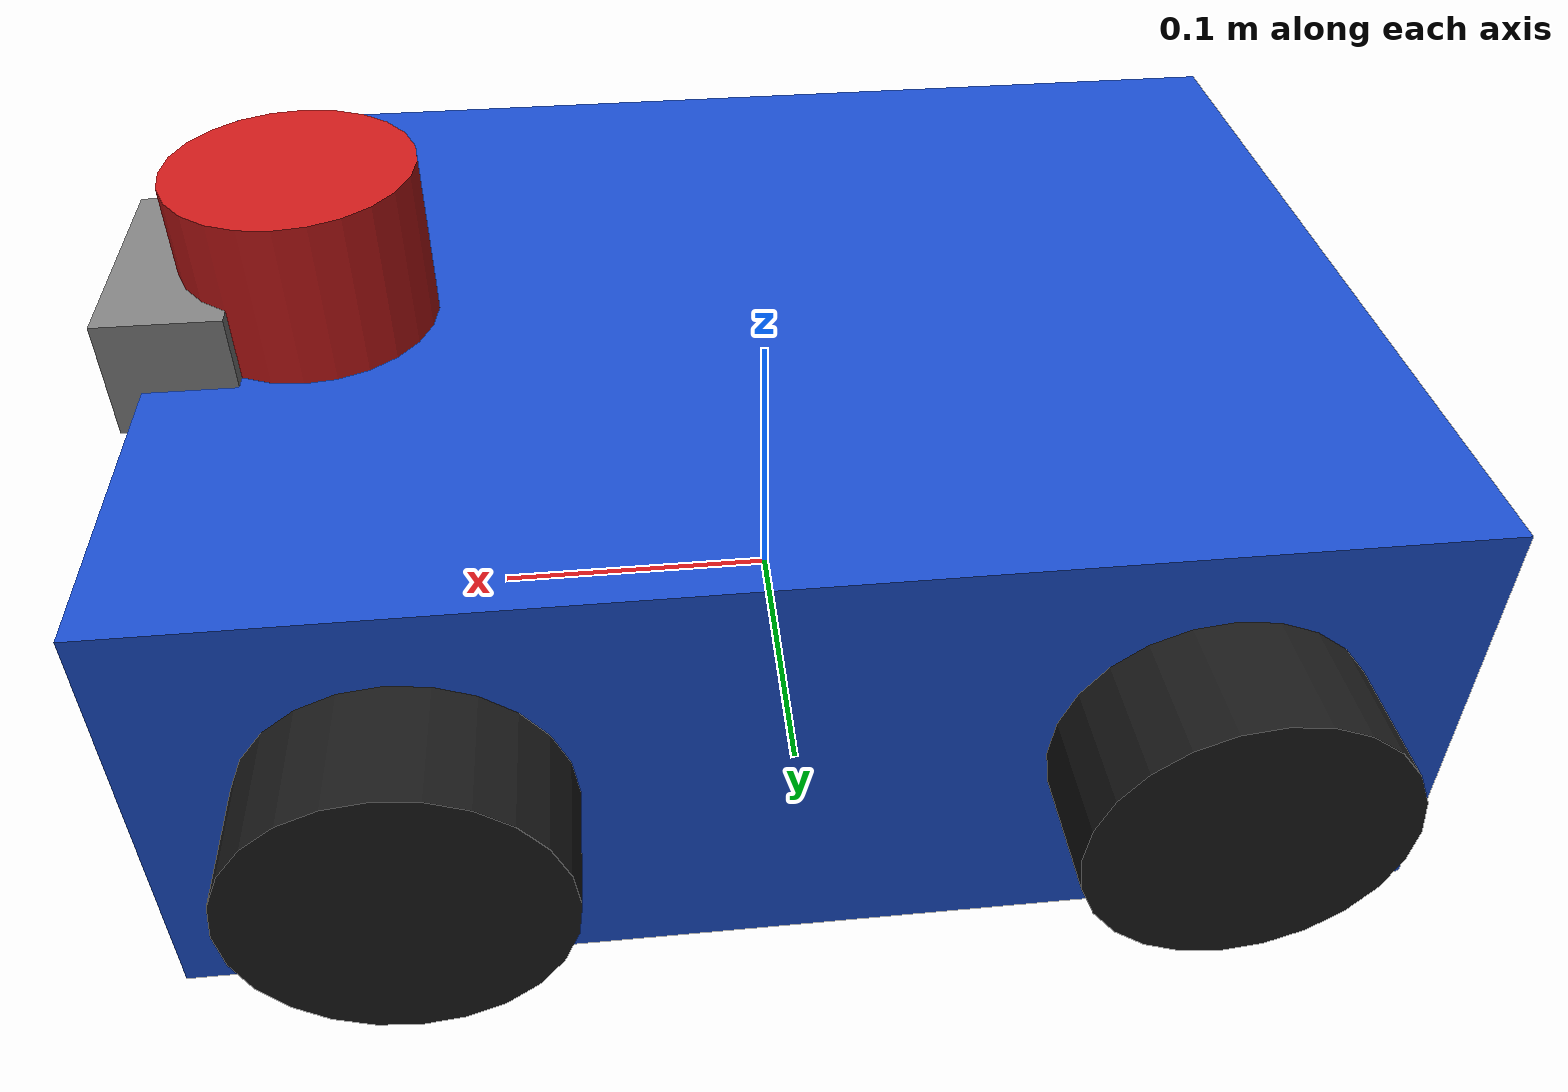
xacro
<?xml version="1.0"?>
<robot name="sim_robot" xmlns:xacro="http://www.ros.org/wiki/xacro">

  <xacro:property name="base_width"      value="0.30"/>
  <xacro:property name="base_length"     value="0.40"/>
  <xacro:property name="base_height"     value="0.15"/>
  <xacro:property name="wheel_radius"    value="0.05"/>
  <xacro:property name="wheel_width"     value="0.04"/>
  <xacro:property name="wheel_sep"       value="0.34"/>

  <material name="blue">  <color rgba="0.1 0.3 0.8 1.0"/> </material>
  <material name="black"> <color rgba="0.1 0.1 0.1 1.0"/> </material>
  <material name="grey">  <color rgba="0.5 0.5 0.5 1.0"/> </material>
  <material name="red">   <color rgba="0.8 0.1 0.1 1.0"/> </material>

  <!-- BASE -->
  <link name="base_footprint"/>

  <joint name="base_joint" type="fixed">
    <parent link="base_footprint"/>
    <child  link="base_link"/>
    <origin xyz="0 0 ${wheel_radius}" rpy="0 0 0"/>
  </joint>

  <link name="base_link">
    <visual>
      <geometry><box size="${base_length} ${base_width} ${base_height}"/></geometry>
      <material name="blue"/>
    </visual>
    <collision>
      <geometry><box size="${base_length} ${base_width} ${base_height}"/></geometry>
    </collision>
    <inertial>
      <mass value="5.0"/>
      <inertia ixx="0.05" ixy="0" ixz="0" iyy="0.08" iyz="0" izz="0.10"/>
    </inertial>
  </link>

  <!-- WHEEL MACRO -->
  <xacro:macro name="wheel" params="name x_pos y_pos">
    <link name="${name}_wheel">
      <visual>
        <geometry><cylinder radius="${wheel_radius}" length="${wheel_width}"/></geometry>
        <material name="black"/>
      </visual>
      <collision>
        <geometry><cylinder radius="${wheel_radius}" length="${wheel_width}"/></geometry>
      </collision>
      <inertial>
        <mass value="0.5"/>
        <inertia ixx="0.001" ixy="0" ixz="0" iyy="0.001" iyz="0" izz="0.002"/>
      </inertial>
    </link>
    <joint name="${name}_wheel_joint" type="continuous">
      <parent link="base_link"/>
      <child  link="${name}_wheel"/>
      <origin xyz="${x_pos} ${y_pos} 0" rpy="-1.5708 0 0"/>
      <axis xyz="0 0 1"/>
    </joint>
  </xacro:macro>

  <xacro:wheel name="left_front"  x_pos=" 0.12" y_pos=" ${wheel_sep/2}"/>
  <xacro:wheel name="right_front" x_pos=" 0.12" y_pos="-${wheel_sep/2}"/>
  <xacro:wheel name="left_rear"   x_pos="-0.12" y_pos=" ${wheel_sep/2}"/>
  <xacro:wheel name="right_rear"  x_pos="-0.12" y_pos="-${wheel_sep/2}"/>

  <!-- CASTER -->
  <link name="caster_link">
    <visual><geometry><sphere radius="0.025"/></geometry><material name="grey"/></visual>
    <collision><geometry><sphere radius="0.025"/></geometry></collision>
    <inertial>
      <mass value="0.1"/>
      <inertia ixx="0.0001" ixy="0" ixz="0" iyy="0.0001" iyz="0" izz="0.0001"/>
    </inertial>
  </link>
  <joint name="caster_joint" type="fixed">
    <parent link="base_link"/>
    <child  link="caster_link"/>
    <origin xyz="-0.17 0 -0.025" rpy="0 0 0"/>
  </joint>

  <!-- LIDAR -->
  <link name="lidar_link">
    <visual><geometry><cylinder radius="0.04" length="0.06"/></geometry><material name="red"/></visual>
    <collision><geometry><cylinder radius="0.04" length="0.06"/></geometry></collision>
    <inertial>
      <mass value="0.2"/>
      <inertia ixx="0.0005" ixy="0" ixz="0" iyy="0.0005" iyz="0" izz="0.0005"/>
    </inertial>
  </link>
  <joint name="lidar_joint" type="fixed">
    <parent link="base_link"/>
    <child  link="lidar_link"/>
    <origin xyz="0.15 0 0.10" rpy="0 0 0"/>
  </joint>

  <!-- CAMERA -->
  <link name="camera_link">
    <visual><geometry><box size="0.04 0.08 0.04"/></geometry><material name="grey"/></visual>
    <collision><geometry><box size="0.04 0.08 0.04"/></geometry></collision>
    <inertial>
      <mass value="0.1"/>
      <inertia ixx="0.0001" ixy="0" ixz="0" iyy="0.0001" iyz="0" izz="0.0001"/>
    </inertial>
  </link>
  <joint name="camera_joint" type="fixed">
    <parent link="base_link"/>
    <child  link="camera_link"/>
    <origin xyz="0.19 0 0.08" rpy="0 0 0"/>
  </joint>

  <link name="camera_optical_link"/>
  <joint name="camera_optical_joint" type="fixed">
    <parent link="camera_link"/>
    <child  link="camera_optical_link"/>
    <origin xyz="0 0 0" rpy="-1.5708 0 -1.5708"/>
  </joint>

  <!-- GAZEBO PLUGINS -->
  <gazebo>
    <plugin name="diff_drive" filename="libgazebo_ros_diff_drive.so">
      <left_joint>left_front_wheel_joint</left_joint>
      <right_joint>right_front_wheel_joint</right_joint>
      <left_joint>left_rear_wheel_joint</left_joint>
      <right_joint>right_rear_wheel_joint</right_joint>
      <wheel_separation>${wheel_sep}</wheel_separation>
      <wheel_diameter>${2*wheel_radius}</wheel_diameter>
      <max_wheel_torque>20</max_wheel_torque>
      <max_wheel_acceleration>1.0</max_wheel_acceleration>
      <publish_odom>true</publish_odom>
      <publish_odom_tf>true</publish_odom_tf>
      <publish_wheel_tf>false</publish_wheel_tf>
      <odometry_frame>odom</odometry_frame>
      <robot_base_frame>base_footprint</robot_base_frame>
    </plugin>
  </gazebo>

  <gazebo reference="lidar_link">
    <sensor name="lidar" type="ray">
      <always_on>true</always_on>
      <visualize>true</visualize>
      <update_rate>10</update_rate>
      <ray>
        <scan>
          <horizontal>
            <samples>360</samples>
            <resolution>1</resolution>
            <min_angle>-3.14159</min_angle>
            <max_angle>3.14159</max_angle>
          </horizontal>
        </scan>
        <range><min>0.12</min><max>10.0</max><resolution>0.01</resolution></range>
      </ray>
      <plugin name="scan" filename="libgazebo_ros_ray_sensor.so">
        <ros><remapping>~/out:=scan</remapping></ros>
        <output_type>sensor_msgs/LaserScan</output_type>
        <frame_name>lidar_link</frame_name>
      </plugin>
    </sensor>
  </gazebo>

  <gazebo reference="camera_link">
    <sensor name="camera" type="camera">
      <always_on>true</always_on>
      <update_rate>30</update_rate>
      <camera>
        <horizontal_fov>1.0856</horizontal_fov>
        <image><width>640</width><height>480</height><format>R8G8B8</format></image>
        <clip><near>0.05</near><far>100</far></clip>
      </camera>
      <plugin name="camera_driver" filename="libgazebo_ros_camera.so">
        <ros>
          <remapping>image_raw:=camera/image_raw</remapping>
          <remapping>camera_info:=camera/camera_info</remapping>
        </ros>
        <camera_name>camera</camera_name>
        <frame_name>camera_optical_link</frame_name>
      </plugin>
    </sensor>
  </gazebo>

</robot>
